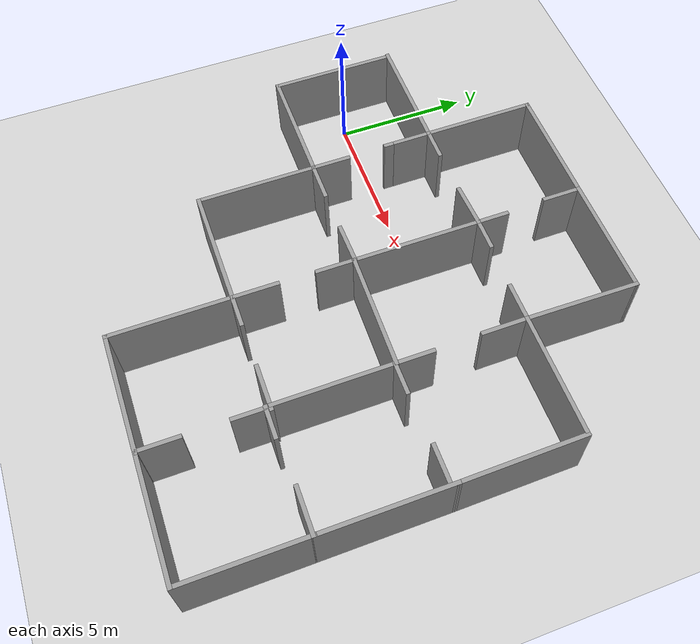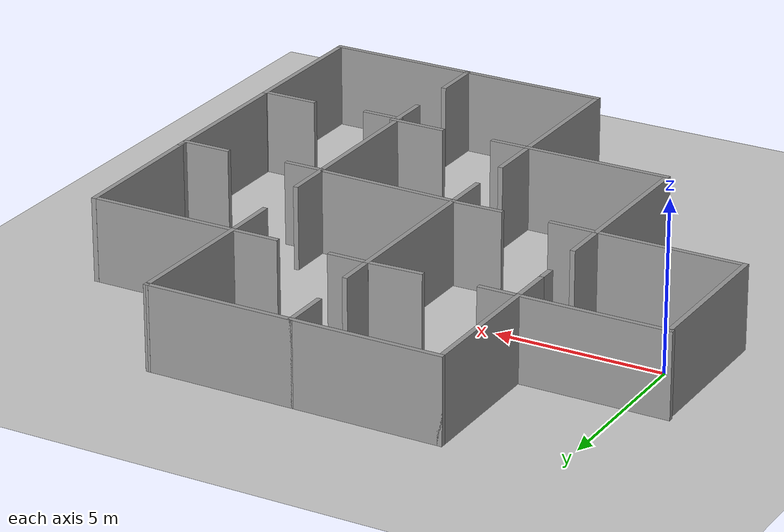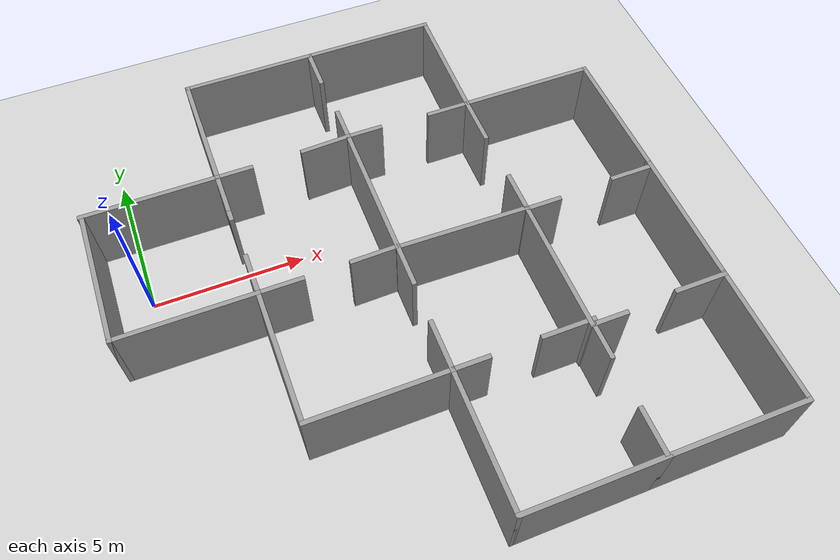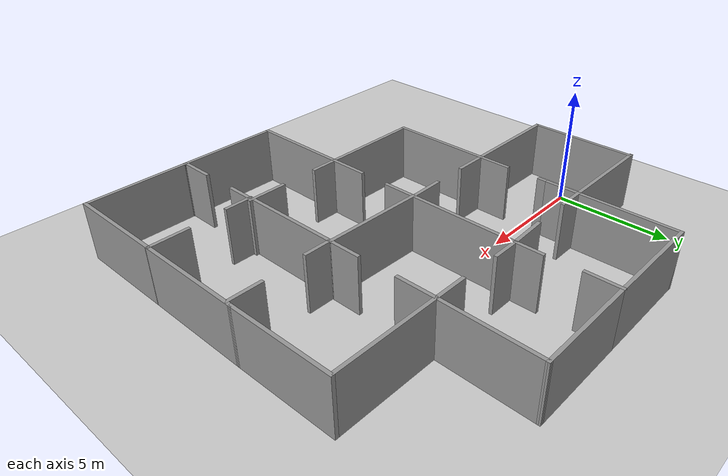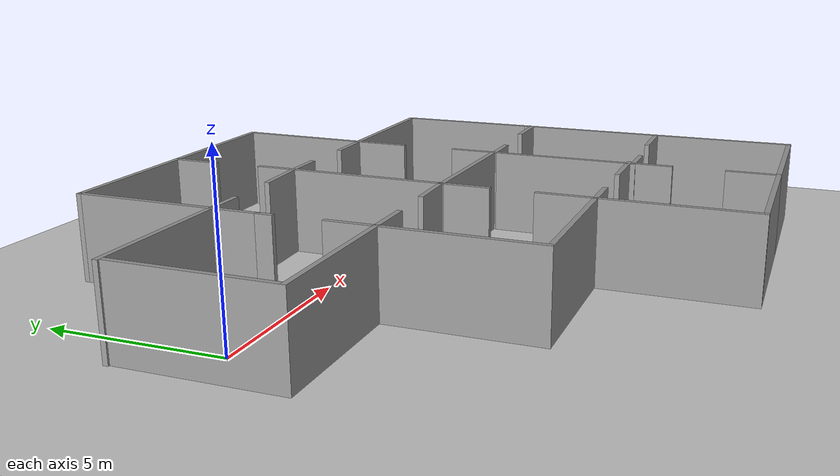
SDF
<sdf version="1.6">
 <world name="default">
  <light name="sun" type="directional">
   <pose>0 0 10 0 -0 0</pose>
   <diffuse>0.8 0.8 0.8 1</diffuse>
   <specular>0.2 0.2 0.2 1</specular>
   <attenuation>
    <range>1000</range>
    <constant>0.9</constant>
    <linear>0.01</linear>
    <quadratic>0.001</quadratic>
   </attenuation>
   <direction>-0.5 0.1 -0.9</direction>
  </light>
  <model name="ground_plane">
   <static>1</static>
   <link name="link">
    <collision name="collision">
     <geometry><plane><normal>0 0 1</normal><size>100 100</size></plane></geometry>
     <surface>
      <contact><collide_bitmask>65535</collide_bitmask></contact>
      <friction><ode><mu>100</mu><mu2>50</mu2></ode></friction>
     </surface>
    </collision>
    <visual name="visual">
     <cast_shadows>0</cast_shadows>
     <geometry><plane><normal>0 0 1</normal><size>100 100</size></plane></geometry>
     <material>
      <script><uri>file://media/materials/scripts/gazebo.material</uri><name>Gazebo/Grey</name></script>
     </material>
    </visual>
   </link>
  </model>
  <gravity>0 0 -9.8</gravity>
  <magnetic_field>6e-06 2.3e-05 -4.2e-05</magnetic_field>
  <atmosphere type="adiabatic"/>
  <physics name="default_physics" default="0" type="ode">
   <max_step_size>0.001</max_step_size>
   <real_time_factor>1</real_time_factor>
   <real_time_update_rate>500</real_time_update_rate>
  </physics>
  <scene><ambient>0.4 0.4 0.4 1</ambient><background>0.7 0.7 0.7 1</background><shadows>1</shadows></scene>
  <audio><device>default</device></audio>
  <spherical_coordinates>
   <surface_model>EARTH_WGS84</surface_model>
   <latitude_deg>0</latitude_deg>
   <longitude_deg>0</longitude_deg>
   <elevation>0</elevation>
   <heading_deg>0</heading_deg>
  </spherical_coordinates>
  <model name="big_house_2">
   <pose>7.50893 -2.2879 0 0 -0 0</pose>
   <link name="Wall_0">
    <collision name="Wall_0_Collision">
     <geometry><box><size>4.75 0.15 2.5</size></box></geometry>
     <pose>0 0 1.25 0 -0 0</pose>
    </collision>
    <visual name="Wall_0_Visual">
     <pose>0 0 1.25 0 -0 0</pose>
     <geometry><box><size>4.75 0.15 2.5</size></box></geometry>
     <material>
      <script><uri>file://media/materials/scripts/gazebo.material</uri><name>Gazebo/Grey</name></script>
      <ambient>1 1 1 1</ambient>
     </material>
     <meta><layer>0</layer></meta>
    </visual>
    <pose>-8.6753 2.29937 0 0 -0 -1.5708</pose>
   </link>
   <link name="Wall_1">
    <collision name="Wall_1_Collision">
     <geometry><box><size>4.5 0.15 2.5</size></box></geometry>
     <pose>0 0 1.25 0 -0 0</pose>
    </collision>
    <visual name="Wall_1_Visual">
     <pose>0 0 1.25 0 -0 0</pose>
     <geometry><box><size>4.5 0.15 2.5</size></box></geometry>
     <material>
      <script><uri>file://media/materials/scripts/gazebo.material</uri><name>Gazebo/Grey</name></script>
      <ambient>1 1 1 1</ambient>
     </material>
     <meta><layer>0</layer></meta>
    </visual>
    <pose>-6.5003 -0.000631 0 0 -0 0</pose>
   </link>
   <link name="Wall_10">
    <collision name="Wall_10_Collision">
     <geometry><box><size>4.53157 0.15 2.5</size></box></geometry>
     <pose>0 0 1.25 0 -0 0</pose>
    </collision>
    <visual name="Wall_10_Visual">
     <pose>0 0 1.25 0 -0 0</pose>
     <geometry><box><size>4.53157 0.15 2.5</size></box></geometry>
     <material>
      <script><uri>file://media/materials/scripts/gazebo.material</uri><name>Gazebo/Grey</name></script>
      <ambient>1 1 1 1</ambient>
     </material>
     <meta><layer>0</layer></meta>
    </visual>
    <pose>8.70711 2.44008 0 0 -0 1.57882</pose>
   </link>
   <link name="Wall_13">
    <collision name="Wall_13_Collision">
     <geometry><box><size>4.25 0.15 2.5</size></box></geometry>
     <pose>0 0 1.25 0 -0 0</pose>
    </collision>
    <visual name="Wall_13_Visual">
     <pose>0 0 1.25 0 -0 0</pose>
     <geometry><box><size>4.25 0.15 2.5</size></box></geometry>
     <material>
      <script><uri>file://media/materials/scripts/gazebo.material</uri><name>Gazebo/Grey</name></script>
      <ambient>1 1 1 1</ambient>
     </material>
     <meta><layer>0</layer></meta>
    </visual>
    <pose>-4.3753 6.64937 0 0 -0 -1.5708</pose>
   </link>
   <link name="Wall_14">
    <collision name="Wall_14_Collision">
     <geometry><box><size>4.5 0.15 2.5</size></box></geometry>
     <pose>0 0 1.25 0 -0 0</pose>
    </collision>
    <visual name="Wall_14_Visual">
     <pose>0 0 1.25 0 -0 0</pose>
     <geometry><box><size>4.5 0.15 2.5</size></box></geometry>
     <material>
      <script><uri>file://media/materials/scripts/gazebo.material</uri><name>Gazebo/Grey</name></script>
      <ambient>1 1 1 1</ambient>
     </material>
     <meta><layer>0</layer></meta>
    </visual>
    <pose>-6.5503 4.59937 0 0 -0 3.14159</pose>
   </link>
   <link name="Wall_16">
    <collision name="Wall_16_Collision">
     <geometry><box><size>1.5 0.15 2.5</size></box></geometry>
     <pose>0 0 1.25 0 -0 0</pose>
    </collision>
    <visual name="Wall_16_Visual">
     <pose>0 0 1.25 0 -0 0</pose>
     <geometry><box><size>1.5 0.15 2.5</size></box></geometry>
     <material>
      <script><uri>file://media/materials/scripts/gazebo.material</uri><name>Gazebo/Grey</name></script>
      <ambient>1 1 1 1</ambient>
     </material>
     <meta><layer>0</layer></meta>
    </visual>
    <pose>-4.3753 3.92437 0 0 -0 -1.5708</pose>
   </link>
   <link name="Wall_18">
    <collision name="Wall_18_Collision">
     <geometry><box><size>1.5 0.15 2.5</size></box></geometry>
     <pose>0 0 1.25 0 -0 0</pose>
    </collision>
    <visual name="Wall_18_Visual">
     <pose>0 0 1.25 0 -0 0</pose>
     <geometry><box><size>1.5 0.15 2.5</size></box></geometry>
     <material>
      <script><uri>file://media/materials/scripts/gazebo.material</uri><name>Gazebo/Grey</name></script>
      <ambient>1 1 1 1</ambient>
     </material>
     <meta><layer>0</layer></meta>
    </visual>
    <pose>-4.3253 0.674369 0 0 -0 1.5708</pose>
   </link>
   <link name="Wall_2">
    <collision name="Wall_2_Collision">
     <geometry><box><size>4.5 0.15 2.5</size></box></geometry>
     <pose>0 0 1.25 0 -0 0</pose>
    </collision>
    <visual name="Wall_2_Visual">
     <pose>0 0 1.25 0 -0 0</pose>
     <geometry><box><size>4.5 0.15 2.5</size></box></geometry>
     <material>
      <script><uri>file://media/materials/scripts/gazebo.material</uri><name>Gazebo/Grey</name></script>
      <ambient>1 1 1 1</ambient>
     </material>
     <meta><layer>0</layer></meta>
    </visual>
    <pose>-4.3253 -2.17563 0 0 -0 -1.5708</pose>
   </link>
   <link name="Wall_20">
    <collision name="Wall_20_Collision">
     <geometry><box><size>1.5 0.15 2.5</size></box></geometry>
     <pose>0 0 1.25 0 -0 0</pose>
    </collision>
    <visual name="Wall_20_Visual">
     <pose>0 0 1.25 0 -0 0</pose>
     <geometry><box><size>1.5 0.15 2.5</size></box></geometry>
     <material>
      <script><uri>file://media/materials/scripts/gazebo.material</uri><name>Gazebo/Grey</name></script>
      <ambient>1 1 1 1</ambient>
     </material>
     <meta><layer>0</layer></meta>
    </visual>
    <pose>-3.6503 -0.000631 0 0 -0 0</pose>
   </link>
   <link name="Wall_22">
    <collision name="Wall_22_Collision">
     <geometry><box><size>1.75 0.15 2.5</size></box></geometry>
     <pose>0 0 1.25 0 -0 0</pose>
    </collision>
    <visual name="Wall_22_Visual">
     <pose>0 0 1.25 0 -0 0</pose>
     <geometry><box><size>1.75 0.15 2.5</size></box></geometry>
     <material>
      <script><uri>file://media/materials/scripts/gazebo.material</uri><name>Gazebo/Grey</name></script>
      <ambient>1 1 1 1</ambient>
     </material>
     <meta><layer>0</layer></meta>
    </visual>
    <pose>0.0247 -3.55063 0 0 -0 1.5708</pose>
   </link>
   <link name="Wall_24">
    <collision name="Wall_24_Collision">
     <geometry><box><size>1.25 0.15 2.5</size></box></geometry>
     <pose>0 0 1.25 0 -0 0</pose>
    </collision>
    <visual name="Wall_24_Visual">
     <pose>0 0 1.25 0 -0 0</pose>
     <geometry><box><size>1.25 0.15 2.5</size></box></geometry>
     <material>
      <script><uri>file://media/materials/scripts/gazebo.material</uri><name>Gazebo/Grey</name></script>
      <ambient>1 1 1 1</ambient>
     </material>
     <meta><layer>0</layer></meta>
    </visual>
    <pose>0.5747 -4.35063 0 0 -0 0</pose>
   </link>
   <link name="Wall_26">
    <collision name="Wall_26_Collision">
     <geometry><box><size>1.75 0.15 2.5</size></box></geometry>
     <pose>0 0 1.25 0 -0 0</pose>
    </collision>
    <visual name="Wall_26_Visual">
     <pose>0 0 1.25 0 -0 0</pose>
     <geometry><box><size>1.75 0.15 2.5</size></box></geometry>
     <material>
      <script><uri>file://media/materials/scripts/gazebo.material</uri><name>Gazebo/Grey</name></script>
      <ambient>1 1 1 1</ambient>
     </material>
     <meta><layer>0</layer></meta>
    </visual>
    <pose>3.61997 -4.33695 0 0 -0 0</pose>
   </link>
   <link name="Wall_28">
    <collision name="Wall_28_Collision">
     <geometry><box><size>1.5 0.15 2.5</size></box></geometry>
     <pose>0 0 1.25 0 -0 0</pose>
    </collision>
    <visual name="Wall_28_Visual">
     <pose>0 0 1.25 0 -0 0</pose>
     <geometry><box><size>1.5 0.15 2.5</size></box></geometry>
     <material>
      <script><uri>file://media/materials/scripts/gazebo.material</uri><name>Gazebo/Grey</name></script>
      <ambient>1 1 1 1</ambient>
     </material>
     <meta><layer>0</layer></meta>
    </visual>
    <pose>4.32738 -7.94848 0 0 -0 1.5708</pose>
   </link>
   <link name="Wall_3">
    <collision name="Wall_3_Collision">
     <geometry><box><size>4.5 0.15 2.5</size></box></geometry>
     <pose>0 0 1.25 0 -0 0</pose>
    </collision>
    <visual name="Wall_3_Visual">
     <pose>0 0 1.25 0 -0 0</pose>
     <geometry><box><size>4.5 0.15 2.5</size></box></geometry>
     <material>
      <script><uri>file://media/materials/scripts/gazebo.material</uri><name>Gazebo/Grey</name></script>
      <ambient>1 1 1 1</ambient>
     </material>
     <meta><layer>0</layer></meta>
    </visual>
    <pose>-2.1503 -4.35063 0 0 -0 0</pose>
   </link>
   <link name="Wall_30">
    <collision name="Wall_30_Collision">
     <geometry><box><size>1.25 0.15 2.5</size></box></geometry>
     <pose>0 0 1.25 0 -0 0</pose>
    </collision>
    <visual name="Wall_30_Visual">
     <pose>0 0 1.25 0 -0 0</pose>
     <geometry><box><size>1.25 0.15 2.5</size></box></geometry>
     <material>
      <script><uri>file://media/materials/scripts/gazebo.material</uri><name>Gazebo/Grey</name></script>
      <ambient>1 1 1 1</ambient>
     </material>
     <meta><layer>0</layer></meta>
    </visual>
    <pose>4.32738 -5.04349 0 0 -0 -1.5708</pose>
   </link>
   <link name="Wall_32">
    <collision name="Wall_32_Collision">
     <geometry><box><size>1.75 0.15 2.5</size></box></geometry>
     <pose>0 0 1.25 0 -0 0</pose>
    </collision>
    <visual name="Wall_32_Visual">
     <pose>0 0 1.25 0 -0 0</pose>
     <geometry><box><size>1.75 0.15 2.5</size></box></geometry>
     <material>
      <script><uri>file://media/materials/scripts/gazebo.material</uri><name>Gazebo/Grey</name></script>
      <ambient>1 1 1 1</ambient>
     </material>
     <meta><layer>0</layer></meta>
    </visual>
    <pose>7.9247 -4.38956 0 0 -0 3.14159</pose>
   </link>
   <link name="Wall_34">
    <collision name="Wall_34_Collision">
     <geometry><box><size>1.60586 0.15 2.5</size></box></geometry>
     <pose>0 0 1.25 0 -0 0</pose>
    </collision>
    <visual name="Wall_34_Visual">
     <pose>0 0 1.25 0 -0 0</pose>
     <geometry><box><size>1.60586 0.15 2.5</size></box></geometry>
     <material>
      <script><uri>file://media/materials/scripts/gazebo.material</uri><name>Gazebo/Grey</name></script>
      <ambient>1 1 1 1</ambient>
     </material>
     <meta><layer>0</layer></meta>
    </visual>
    <pose>-0.686022 0.035237 0 0 -0 0.021013</pose>
   </link>
   <link name="Wall_35">
    <collision name="Wall_35_Collision">
     <geometry><box><size>1.53059 0.15 2.5</size></box></geometry>
     <pose>0 0 1.25 0 -0 0</pose>
    </collision>
    <visual name="Wall_35_Visual">
     <pose>0 0 1.25 0 -0 0</pose>
     <geometry><box><size>1.53059 0.15 2.5</size></box></geometry>
     <material>
      <script><uri>file://media/materials/scripts/gazebo.material</uri><name>Gazebo/Grey</name></script>
      <ambient>1 1 1 1</ambient>
     </material>
     <meta><layer>0</layer></meta>
    </visual>
    <pose>0.041746 -0.639763 0 0 -0 -1.5708</pose>
   </link>
   <link name="Wall_37">
    <collision name="Wall_37_Collision">
     <geometry><box><size>1.25 0.15 2.5</size></box></geometry>
     <pose>0 0 1.25 0 -0 0</pose>
    </collision>
    <visual name="Wall_37_Visual">
     <pose>0 0 1.25 0 -0 0</pose>
     <geometry><box><size>1.25 0.15 2.5</size></box></geometry>
     <material>
      <script><uri>file://media/materials/scripts/gazebo.material</uri><name>Gazebo/Grey</name></script>
      <ambient>1 1 1 1</ambient>
     </material>
     <meta><layer>0</layer></meta>
    </visual>
    <pose>-3.8253 4.59937 0 0 -0 0</pose>
   </link>
   <link name="Wall_39">
    <collision name="Wall_39_Collision">
     <geometry><box><size>1.72844 0.15 2.5</size></box></geometry>
     <pose>0 0 1.25 0 -0 0</pose>
    </collision>
    <visual name="Wall_39_Visual">
     <pose>0 0 1.25 0 -0 0</pose>
     <geometry><box><size>1.72844 0.15 2.5</size></box></geometry>
     <material>
      <script><uri>file://media/materials/scripts/gazebo.material</uri><name>Gazebo/Grey</name></script>
      <ambient>1 1 1 1</ambient>
     </material>
     <meta><layer>0</layer></meta>
    </visual>
    <pose>-0.732823 4.66354 0 0 -0 0.044589</pose>
   </link>
   <link name="Wall_4">
    <collision name="Wall_4_Collision">
     <geometry><box><size>4.5 0.15 2.5</size></box></geometry>
     <pose>0 0 1.25 0 -0 0</pose>
    </collision>
    <visual name="Wall_4_Visual">
     <pose>0 0 1.25 0 -0 0</pose>
     <geometry><box><size>4.5 0.15 2.5</size></box></geometry>
     <material>
      <script><uri>file://media/materials/scripts/gazebo.material</uri><name>Gazebo/Grey</name></script>
      <ambient>1 1 1 1</ambient>
     </material>
     <meta><layer>0</layer></meta>
    </visual>
    <pose>0.0247 -6.52563 0 0 -0 -1.5708</pose>
   </link>
   <link name="Wall_43">
    <collision name="Wall_43_Collision">
     <geometry><box><size>4.79821 0.15 2.5</size></box></geometry>
     <pose>0 0 1.25 0 -0 0</pose>
    </collision>
    <visual name="Wall_43_Visual">
     <pose>0 0 1.25 0 -0 0</pose>
     <geometry><box><size>4.79821 0.15 2.5</size></box></geometry>
     <material>
      <script><uri>file://media/materials/scripts/gazebo.material</uri><name>Gazebo/Grey</name></script>
      <ambient>1 1 1 1</ambient>
     </material>
     <meta><layer>0</layer></meta>
    </visual>
    <pose>0.048679 2.37462 0 0 -0 -1.57378</pose>
   </link>
   <link name="Wall_45">
    <collision name="Wall_45_Collision">
     <geometry><box><size>4.39598 0.15 2.5</size></box></geometry>
     <pose>0 0 1.25 0 -0 0</pose>
    </collision>
    <visual name="Wall_45_Visual">
     <pose>0 0 1.25 0 -0 0</pose>
     <geometry><box><size>4.39598 0.15 2.5</size></box></geometry>
     <material>
      <script><uri>file://media/materials/scripts/gazebo.material</uri><name>Gazebo/Grey</name></script>
      <ambient>1 1 1 1</ambient>
     </material>
     <meta><layer>0</layer></meta>
    </visual>
    <pose>2.16434 -0.02132 0 0 -0 -0.019437</pose>
   </link>
   <link name="Wall_46">
    <collision name="Wall_46_Collision">
     <geometry><box><size>4.58091 0.15 2.5</size></box></geometry>
     <pose>0 0 1.25 0 -0 0</pose>
    </collision>
    <visual name="Wall_46_Visual">
     <pose>0 0 1.25 0 -0 0</pose>
     <geometry><box><size>4.58091 0.15 2.5</size></box></geometry>
     <material>
      <script><uri>file://media/materials/scripts/gazebo.material</uri><name>Gazebo/Grey</name></script>
      <ambient>1 1 1 1</ambient>
     </material>
     <meta><layer>0</layer></meta>
    </visual>
    <pose>4.28693 -2.27804 0 0 -0 -1.5708</pose>
   </link>
   <link name="Wall_48">
    <collision name="Wall_48_Collision">
     <geometry><box><size>1.25 0.15 2.5</size></box></geometry>
     <pose>0 0 1.25 0 -0 0</pose>
    </collision>
    <visual name="Wall_48_Visual">
     <pose>0 0 1.25 0 -0 0</pose>
     <geometry><box><size>1.25 0.15 2.5</size></box></geometry>
     <material>
      <script><uri>file://media/materials/scripts/gazebo.material</uri><name>Gazebo/Grey</name></script>
      <ambient>1 1 1 1</ambient>
     </material>
     <meta><layer>0</layer></meta>
    </visual>
    <pose>4.83693 -0.103037 0 0 -0 0</pose>
   </link>
   <link name="Wall_5">
    <collision name="Wall_5_Collision">
     <geometry><box><size>4.5 0.15 2.5</size></box></geometry>
     <pose>0 0 1.25 0 -0 0</pose>
    </collision>
    <visual name="Wall_5_Visual">
     <pose>0 0 1.25 0 -0 0</pose>
     <geometry><box><size>4.5 0.15 2.5</size></box></geometry>
     <material>
      <script><uri>file://media/materials/scripts/gazebo.material</uri><name>Gazebo/Grey</name></script>
      <ambient>1 1 1 1</ambient>
     </material>
     <meta><layer>0</layer></meta>
    </visual>
    <pose>2.1997 -8.70063 0 0 -0 0</pose>
   </link>
   <link name="Wall_50">
    <collision name="Wall_50_Collision">
     <geometry><box><size>1.5 0.15 2.5</size></box></geometry>
     <pose>0 0 1.25 0 -0 0</pose>
    </collision>
    <visual name="Wall_50_Visual">
     <pose>0 0 1.25 0 -0 0</pose>
     <geometry><box><size>1.5 0.15 2.5</size></box></geometry>
     <material>
      <script><uri>file://media/materials/scripts/gazebo.material</uri><name>Gazebo/Grey</name></script>
      <ambient>1 1 1 1</ambient>
     </material>
     <meta><layer>0</layer></meta>
    </visual>
    <pose>8.02083 -0.006356 0 0 -0 0</pose>
   </link>
   <link name="Wall_57">
    <collision name="Wall_57_Collision">
     <geometry><box><size>1.25 0.15 2.5</size></box></geometry>
     <pose>0 0 1.25 0 -0 0</pose>
    </collision>
    <visual name="Wall_57_Visual">
     <pose>0 0 1.25 0 -0 0</pose>
     <geometry><box><size>1.25 0.15 2.5</size></box></geometry>
     <material>
      <script><uri>file://media/materials/scripts/gazebo.material</uri><name>Gazebo/Grey</name></script>
      <ambient>1 1 1 1</ambient>
     </material>
     <meta><layer>0</layer></meta>
    </visual>
    <pose>4.83693 -4.49349 0 0 -0 0</pose>
   </link>
   <link name="Wall_63">
    <collision name="Wall_63_Collision">
     <geometry><box><size>4.5 0.15 2.5</size></box></geometry>
     <pose>0 0 1.25 0 -0 0</pose>
    </collision>
    <visual name="Wall_63_Visual">
     <pose>0 0 1.25 0 -0 0</pose>
     <geometry><box><size>4.5 0.15 2.5</size></box></geometry>
     <material>
      <script><uri>file://media/materials/scripts/gazebo.material</uri><name>Gazebo/Grey</name></script>
      <ambient>1 1 1 1</ambient>
     </material>
     <meta><layer>0</layer></meta>
    </visual>
    <pose>6.43061 4.62836 0 0 -0 0</pose>
   </link>
   <link name="Wall_67">
    <collision name="Wall_67_Collision">
     <geometry><box><size>1.75 0.15 2.5</size></box></geometry>
     <pose>0 0 1.25 0 -0 0</pose>
    </collision>
    <visual name="Wall_67_Visual">
     <pose>0 0 1.25 0 -0 0</pose>
     <geometry><box><size>1.75 0.15 2.5</size></box></geometry>
     <material>
      <script><uri>file://media/materials/scripts/gazebo.material</uri><name>Gazebo/Grey</name></script>
      <ambient>1 1 1 1</ambient>
     </material>
     <meta><layer>0</layer></meta>
    </visual>
    <pose>4.25561 3.82836 0 0 -0 -1.5708</pose>
   </link>
   <link name="Wall_69">
    <collision name="Wall_69_Collision">
     <geometry><box><size>1.5 0.15 2.5</size></box></geometry>
     <pose>0 0 1.25 0 -0 0</pose>
    </collision>
    <visual name="Wall_69_Visual">
     <pose>0 0 1.25 0 -0 0</pose>
     <geometry><box><size>1.5 0.15 2.5</size></box></geometry>
     <material>
      <script><uri>file://media/materials/scripts/gazebo.material</uri><name>Gazebo/Grey</name></script>
      <ambient>1 1 1 1</ambient>
     </material>
     <meta><layer>0</layer></meta>
    </visual>
    <pose>4.28693 0.571963 0 0 -0 1.5708</pose>
   </link>
   <link name="Wall_7">
    <collision name="Wall_7_Collision">
     <geometry><box><size>4.5 0.15 2.5</size></box></geometry>
     <pose>0 0 1.25 0 -0 0</pose>
    </collision>
    <visual name="Wall_7_Visual">
     <pose>0 0 1.25 0 -0 0</pose>
     <geometry><box><size>4.5 0.15 2.5</size></box></geometry>
     <material>
      <script><uri>file://media/materials/scripts/gazebo.material</uri><name>Gazebo/Grey</name></script>
      <ambient>1 1 1 1</ambient>
     </material>
     <meta><layer>0</layer></meta>
    </visual>
    <pose>6.5497 -8.70063 0 0 -0 0</pose>
   </link>
   <link name="Wall_71">
    <collision name="Wall_71_Collision">
     <geometry><box><size>1.5 0.15 2.5</size></box></geometry>
     <pose>0 0 1.25 0 -0 0</pose>
    </collision>
    <visual name="Wall_71_Visual">
     <pose>0 0 1.25 0 -0 0</pose>
     <geometry><box><size>1.5 0.15 2.5</size></box></geometry>
     <material>
      <script><uri>file://media/materials/scripts/gazebo.material</uri><name>Gazebo/Grey</name></script>
      <ambient>1 1 1 1</ambient>
     </material>
     <meta><layer>0</layer></meta>
    </visual>
    <pose>3.58061 4.62836 0 0 -0 3.14159</pose>
   </link>
   <link name="Wall_73">
    <collision name="Wall_73_Collision">
     <geometry><box><size>1.25 0.15 2.5</size></box></geometry>
     <pose>0 0 1.25 0 -0 0</pose>
    </collision>
    <visual name="Wall_73_Visual">
     <pose>0 0 1.25 0 -0 0</pose>
     <geometry><box><size>1.25 0.15 2.5</size></box></geometry>
     <material>
      <script><uri>file://media/materials/scripts/gazebo.material</uri><name>Gazebo/Grey</name></script>
      <ambient>1 1 1 1</ambient>
     </material>
     <meta><layer>0</layer></meta>
    </visual>
    <pose>0.605612 4.69872 0 0 -0 0</pose>
   </link>
   <link name="Wall_75">
    <collision name="Wall_75_Collision">
     <geometry><box><size>4.5 0.15 2.5</size></box></geometry>
     <pose>0 0 1.25 0 -0 0</pose>
    </collision>
    <visual name="Wall_75_Visual">
     <pose>0 0 1.25 0 -0 0</pose>
     <geometry><box><size>4.5 0.15 2.5</size></box></geometry>
     <material>
      <script><uri>file://media/materials/scripts/gazebo.material</uri><name>Gazebo/Grey</name></script>
      <ambient>1 1 1 1</ambient>
     </material>
     <meta><layer>0</layer></meta>
    </visual>
    <pose>-2.2003 8.69937 0 0 -0 0</pose>
   </link>
   <link name="Wall_76">
    <collision name="Wall_76_Collision">
     <geometry><box><size>1.5 0.15 2.5</size></box></geometry>
     <pose>0 0 1.25 0 -0 0</pose>
    </collision>
    <visual name="Wall_76_Visual">
     <pose>0 0 1.25 0 -0 0</pose>
     <geometry><box><size>1.5 0.15 2.5</size></box></geometry>
     <material>
      <script><uri>file://media/materials/scripts/gazebo.material</uri><name>Gazebo/Grey</name></script>
      <ambient>1 1 1 1</ambient>
     </material>
     <meta><layer>0</layer></meta>
    </visual>
    <pose>-0.0253 8.02437 0 0 -0 -1.5708</pose>
   </link>
   <link name="Wall_79">
    <collision name="Wall_79_Collision">
     <geometry><box><size>4.5 0.15 2.5</size></box></geometry>
     <pose>0 0 1.25 0 -0 0</pose>
    </collision>
    <visual name="Wall_79_Visual">
     <pose>0 0 1.25 0 -0 0</pose>
     <geometry><box><size>4.5 0.15 2.5</size></box></geometry>
     <material>
      <script><uri>file://media/materials/scripts/gazebo.material</uri><name>Gazebo/Grey</name></script>
      <ambient>1 1 1 1</ambient>
     </material>
     <meta><layer>0</layer></meta>
    </visual>
    <pose>2.1497 8.69937 0 0 -0 0</pose>
   </link>
   <link name="Wall_8">
    <collision name="Wall_8_Collision">
     <geometry><box><size>4.49625 0.15 2.5</size></box></geometry>
     <pose>0 0 1.25 0 -0 0</pose>
    </collision>
    <visual name="Wall_8_Visual">
     <pose>0 0 1.25 0 -0 0</pose>
     <geometry><box><size>4.49625 0.15 2.5</size></box></geometry>
     <material>
      <script><uri>file://media/materials/scripts/gazebo.material</uri><name>Gazebo/Grey</name></script>
      <ambient>1 1 1 1</ambient>
     </material>
     <meta><layer>0</layer></meta>
    </visual>
    <pose>8.7247 -6.5275 0 0 -0 1.5708</pose>
   </link>
   <link name="Wall_80">
    <collision name="Wall_80_Collision">
     <geometry><box><size>4.22159 0.15 2.5</size></box></geometry>
     <pose>0 0 1.25 0 -0 0</pose>
    </collision>
    <visual name="Wall_80_Visual">
     <pose>0 0 1.25 0 -0 0</pose>
     <geometry><box><size>4.22159 0.15 2.5</size></box></geometry>
     <material>
      <script><uri>file://media/materials/scripts/gazebo.material</uri><name>Gazebo/Grey</name></script>
      <ambient>1 1 1 1</ambient>
     </material>
     <meta><layer>0</layer></meta>
    </visual>
    <pose>4.29016 6.66387 0 0 -0 -1.58777</pose>
   </link>
   <link name="Wall_82">
    <collision name="Wall_82_Collision">
     <geometry><box><size>1.25 0.15 2.5</size></box></geometry>
     <pose>0 0 1.25 0 -0 0</pose>
    </collision>
    <visual name="Wall_82_Visual">
     <pose>0 0 1.25 0 -0 0</pose>
     <geometry><box><size>1.25 0.15 2.5</size></box></geometry>
     <material>
      <script><uri>file://media/materials/scripts/gazebo.material</uri><name>Gazebo/Grey</name></script>
      <ambient>1 1 1 1</ambient>
     </material>
     <meta><layer>0</layer></meta>
    </visual>
    <pose>0.055612 5.24872 0 0 -0 1.5708</pose>
   </link>
   <link name="Wall_9">
    <collision name="Wall_9_Collision">
     <geometry><box><size>4.75375 0.15 2.5</size></box></geometry>
     <pose>0 0 1.25 0 -0 0</pose>
    </collision>
    <visual name="Wall_9_Visual">
     <pose>0 0 1.25 0 -0 0</pose>
     <geometry><box><size>4.75375 0.15 2.5</size></box></geometry>
     <material>
      <script><uri>file://media/materials/scripts/gazebo.material</uri><name>Gazebo/Grey</name></script>
      <ambient>1 1 1 1</ambient>
     </material>
     <meta><layer>0</layer></meta>
    </visual>
    <pose>8.7247 -2.05251 0 0 -0 1.5708</pose>
   </link>
   <static>1</static>
  </model>
  <model name="Untitled1">
   <pose>3.13256 0.754752 0 0 -0 0</pose>
   <link name="Wall_3">
    <collision name="Wall_3_Collision">
     <geometry><box><size>0.5 0.15 2.5</size></box></geometry>
     <pose>0 0 1.25 0 -0 0</pose>
    </collision>
    <visual name="Wall_3_Visual">
     <pose>0 0 1.25 0 -0 0</pose>
     <geometry><box><size>0.5 0.15 2.5</size></box></geometry>
     <material>
      <script><uri>file://media/materials/scripts/gazebo.material</uri><name>Gazebo/Grey</name></script>
      <ambient>1 1 1 1</ambient>
     </material>
     <meta><layer>0</layer></meta>
    </visual>
    <pose>0 0 0 0 -0 -1.5708</pose>
   </link>
   <static>1</static>
  </model>
 </world>
</sdf>
